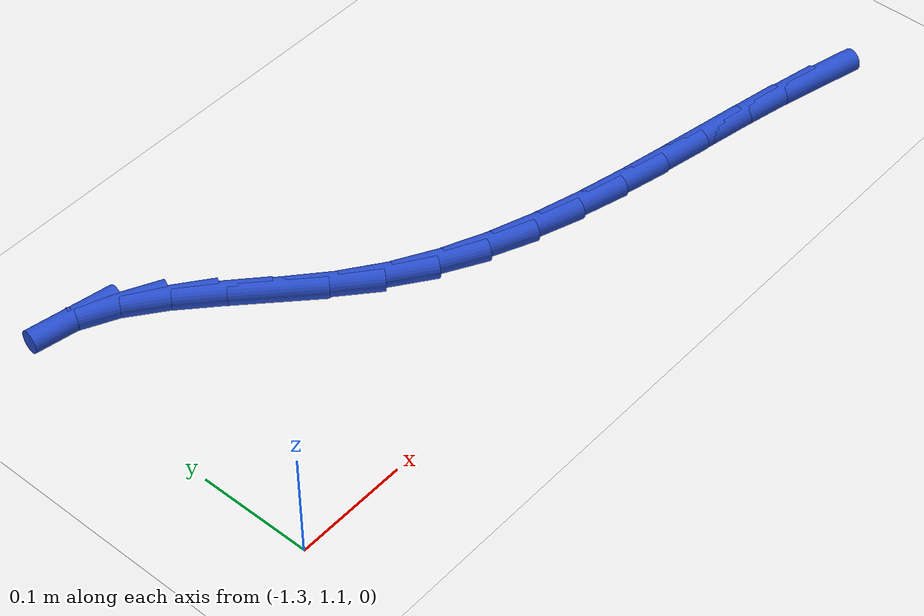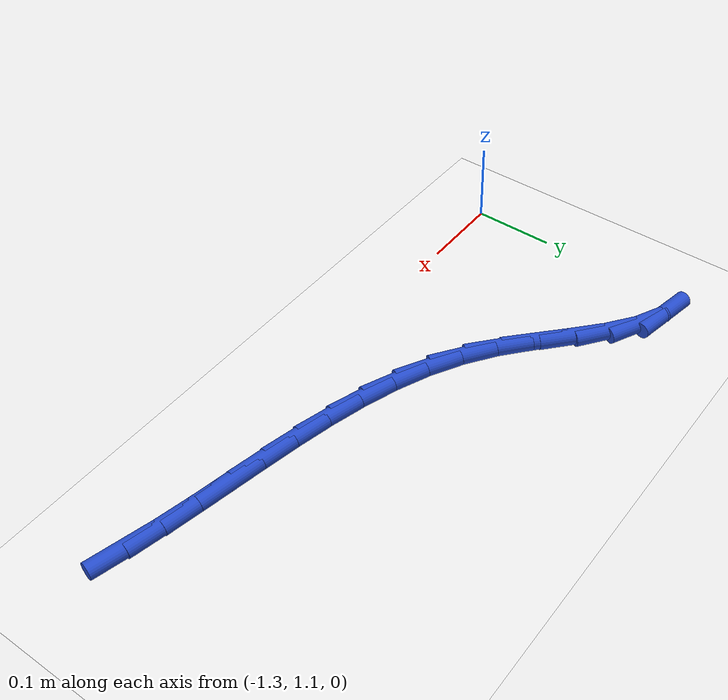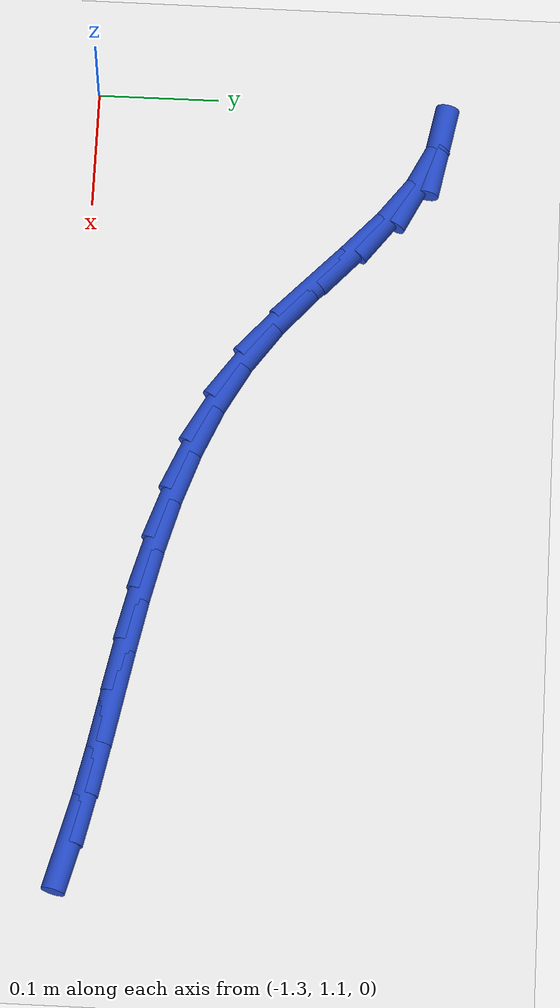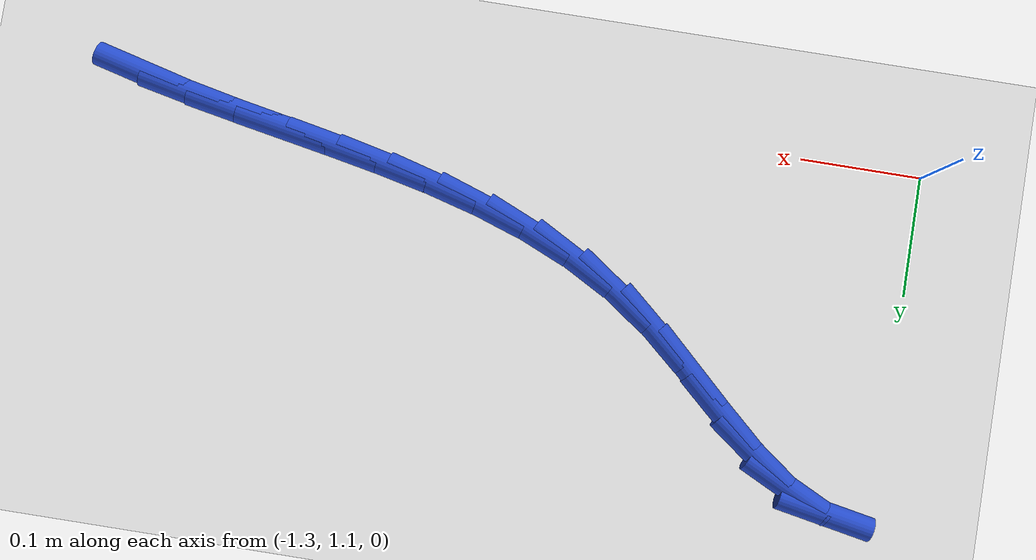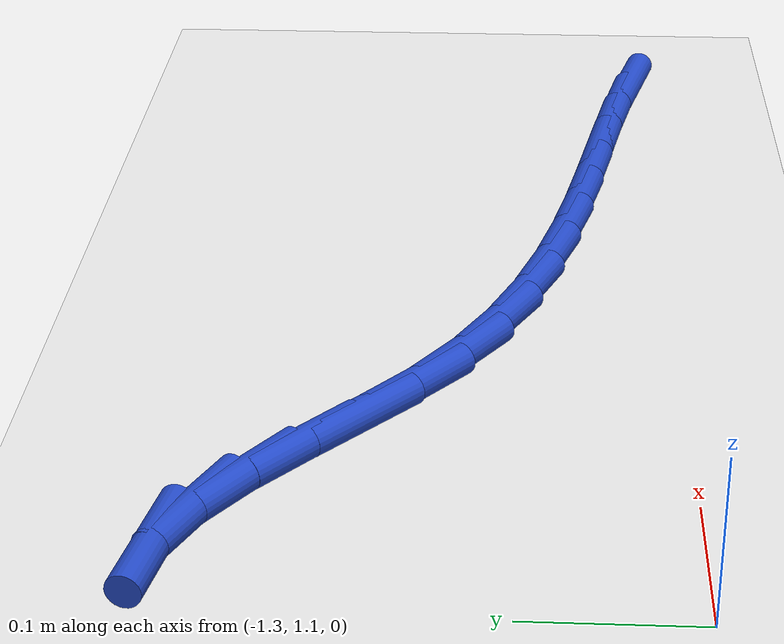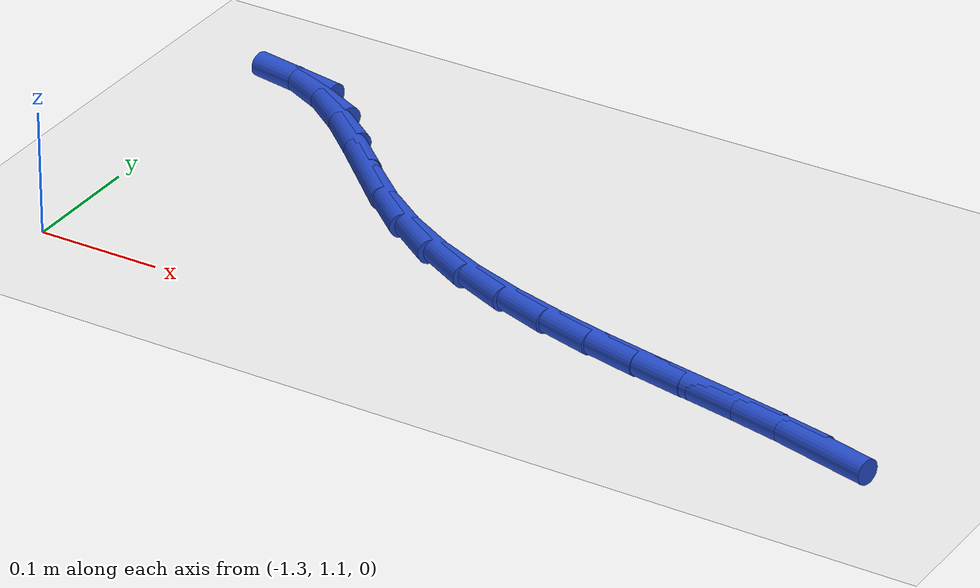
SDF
<sdf version="1.6">
 <world name="default">
  <model name="ground_plane">
   <static>1</static>
   <link name="link">
    <collision name="collision">
     <geometry><plane><normal>0 0 1</normal><size>100 100</size></plane></geometry>
     <surface><friction><ode><mu>100</mu><mu2>50</mu2></ode></friction></surface>
    </collision>
    <visual name="visual">
     <cast_shadows>0</cast_shadows>
     <geometry><plane><normal>0 0 1</normal><size>100 100</size></plane></geometry>
     <material>
      <script><uri>file://media/materials/scripts/gazebo.material</uri><name>Gazebo/WhiteGlow</name></script>
     </material>
    </visual>
   </link>
  </model>
  <model name="line">
   <link name="link_33">
    <pose>-0.6480955683417341 1.1151855350106041 0.01 0 1.57 -0.25111926044509847</pose>
    <collision name="collision">
     <geometry><cylinder><radius>0.01</radius><length>0.08</length></cylinder></geometry>
    </collision>
    <visual name="visual">
     <material>
      <script><name>Gazebo/Blue</name><uri>file://media/materials/scripts/gazebo.material</uri></script>
     </material>
     <geometry><cylinder><radius>0.01</radius><length>0.08</length></cylinder></geometry>
    </visual>
   </link>
   <link name="link_34">
    <pose>-0.6876729809734647 1.1253385067006678 0.01 0 1.57 -0.21130392288726207</pose>
    <collision name="collision">
     <geometry><cylinder><radius>0.01</radius><length>0.08</length></cylinder></geometry>
    </collision>
    <visual name="visual">
     <material>
      <script><name>Gazebo/Blue</name><uri>file://media/materials/scripts/gazebo.material</uri></script>
     </material>
     <geometry><cylinder><radius>0.01</radius><length>0.08</length></cylinder></geometry>
    </visual>
   </link>
   <link name="link_35">
    <pose>-0.7288344874224764 1.1341678961373154 0.01 0 1.57 -0.19003809825175072</pose>
    <collision name="collision">
     <geometry><cylinder><radius>0.01</radius><length>0.08</length></cylinder></geometry>
    </collision>
    <visual name="visual">
     <material>
      <script><name>Gazebo/Blue</name><uri>file://media/materials/scripts/gazebo.material</uri></script>
     </material>
     <geometry><cylinder><radius>0.01</radius><length>0.08</length></cylinder></geometry>
    </visual>
   </link>
   <link name="link_36">
    <pose>-0.7711392593505028 1.14230561436565 0.01 0 1.57 -0.18566479154197033</pose>
    <collision name="collision">
     <geometry><cylinder><radius>0.01</radius><length>0.08</length></cylinder></geometry>
    </collision>
    <visual name="visual">
     <material>
      <script><name>Gazebo/Blue</name><uri>file://media/materials/scripts/gazebo.material</uri></script>
     </material>
     <geometry><cylinder><radius>0.01</radius><length>0.08</length></cylinder></geometry>
    </visual>
   </link>
   <link name="link_37">
    <pose>-0.8141464684192783 1.1503835724307756 0.01 0 1.57 -0.19731434381740204</pose>
    <collision name="collision">
     <geometry><cylinder><radius>0.01</radius><length>0.08</length></cylinder></geometry>
    </collision>
    <visual name="visual">
     <material>
      <script><name>Gazebo/Blue</name><uri>file://media/materials/scripts/gazebo.material</uri></script>
     </material>
     <geometry><cylinder><radius>0.01</radius><length>0.08</length></cylinder></geometry>
    </visual>
   </link>
   <link name="link_38">
    <pose>-0.857415286290536 1.1590336813777957 0.01 0 1.57 -0.22482408421275132</pose>
    <collision name="collision">
     <geometry><cylinder><radius>0.01</radius><length>0.08</length></cylinder></geometry>
    </collision>
    <visual name="visual">
     <material>
      <script><name>Gazebo/Blue</name><uri>file://media/materials/scripts/gazebo.material</uri></script>
     </material>
     <geometry><cylinder><radius>0.01</radius><length>0.08</length></cylinder></geometry>
    </visual>
   </link>
   <link name="link_39">
    <pose>-0.9005048846260102 1.1688878522518136 0.01 0 1.57 -0.26860737601872353</pose>
    <collision name="collision">
     <geometry><cylinder><radius>0.01</radius><length>0.08</length></cylinder></geometry>
    </collision>
    <visual name="visual">
     <material>
      <script><name>Gazebo/Blue</name><uri>file://media/materials/scripts/gazebo.material</uri></script>
     </material>
     <geometry><cylinder><radius>0.01</radius><length>0.08</length></cylinder></geometry>
    </visual>
   </link>
   <link name="link_40">
    <pose>-0.9429744350874343 1.1805779960979335 0.01 0 1.57 -0.329449333892676</pose>
    <collision name="collision">
     <geometry><cylinder><radius>0.01</radius><length>0.08</length></cylinder></geometry>
    </collision>
    <visual name="visual">
     <material>
      <script><name>Gazebo/Blue</name><uri>file://media/materials/scripts/gazebo.material</uri></script>
     </material>
     <geometry><cylinder><radius>0.01</radius><length>0.08</length></cylinder></geometry>
    </visual>
   </link>
   <link name="link_41">
    <pose>-0.9843831093365423 1.1947360239612588 0.01 0 1.57 -0.40816504107593854</pose>
    <collision name="collision">
     <geometry><cylinder><radius>0.01</radius><length>0.08</length></cylinder></geometry>
    </collision>
    <visual name="visual">
     <material>
      <script><name>Gazebo/Blue</name><uri>file://media/materials/scripts/gazebo.material</uri></script>
     </material>
     <geometry><cylinder><radius>0.01</radius><length>0.08</length></cylinder></geometry>
    </visual>
   </link>
   <link name="link_42">
    <pose>-1.0242900790350677 1.2119938468868927 0.01 0 1.57 -0.5050466349754343</pose>
    <collision name="collision">
     <geometry><cylinder><radius>0.01</radius><length>0.08</length></cylinder></geometry>
    </collision>
    <visual name="visual">
     <material>
      <script><name>Gazebo/Blue</name><uri>file://media/materials/scripts/gazebo.material</uri></script>
     </material>
     <geometry><cylinder><radius>0.01</radius><length>0.08</length></cylinder></geometry>
    </visual>
   </link>
   <link name="link_43">
    <pose>-1.0622545158447445 1.2329833759199391 0.01 0 1.57 -0.618666435638847</pose>
    <collision name="collision">
     <geometry><cylinder><radius>0.01</radius><length>0.08</length></cylinder></geometry>
    </collision>
    <visual name="visual">
     <material>
      <script><name>Gazebo/Blue</name><uri>file://media/materials/scripts/gazebo.material</uri></script>
     </material>
     <geometry><cylinder><radius>0.01</radius><length>0.08</length></cylinder></geometry>
    </visual>
   </link>
   <link name="link_44">
    <pose>-1.0978425393630487 1.258318407421768 0.01 0 1.57 -0.7179241758423572</pose>
    <collision name="collision">
     <geometry><cylinder><radius>0.01</radius><length>0.08</length></cylinder></geometry>
    </collision>
    <visual name="visual">
     <material>
      <script><name>Gazebo/Blue</name><uri>file://media/materials/scripts/gazebo.material</uri></script>
     </material>
     <geometry><cylinder><radius>0.01</radius><length>0.08</length></cylinder></geometry>
    </visual>
   </link>
   <link name="link_45">
    <pose>-1.131098978446382 1.287364645205541 0.01 0 1.57 -0.7585628702160012</pose>
    <collision name="collision">
     <geometry><cylinder><radius>0.01</radius><length>0.08</length></cylinder></geometry>
    </collision>
    <visual name="visual">
     <material>
      <script><name>Gazebo/Blue</name><uri>file://media/materials/scripts/gazebo.material</uri></script>
     </material>
     <geometry><cylinder><radius>0.01</radius><length>0.08</length></cylinder></geometry>
    </visual>
   </link>
   <link name="link_46">
    <pose>-1.1628485845207308 1.3174543760799788 0.01 0 1.57 -0.7372889719506099</pose>
    <collision name="collision">
     <geometry><cylinder><radius>0.01</radius><length>0.08</length></cylinder></geometry>
    </collision>
    <visual name="visual">
     <material>
      <script><name>Gazebo/Blue</name><uri>file://media/materials/scripts/gazebo.material</uri></script>
     </material>
     <geometry><cylinder><radius>0.01</radius><length>0.08</length></cylinder></geometry>
    </visual>
   </link>
   <link name="link_47">
    <pose>-1.1939878359994052 1.3457328799874964 0.01 0 1.57 -0.6443869454229623</pose>
    <collision name="collision">
     <geometry><cylinder><radius>0.01</radius><length>0.08</length></cylinder></geometry>
    </collision>
    <visual name="visual">
     <material>
      <script><name>Gazebo/Blue</name><uri>file://media/materials/scripts/gazebo.material</uri></script>
     </material>
     <geometry><cylinder><radius>0.01</radius><length>0.08</length></cylinder></geometry>
    </visual>
   </link>
   <link name="link_48">
    <pose>-1.2254132112957157 1.3693454368705085 0.01 0 1.57 -0.4584365714877746</pose>
    <collision name="collision">
     <geometry><cylinder><radius>0.01</radius><length>0.08</length></cylinder></geometry>
    </collision>
    <visual name="visual">
     <material>
      <script><name>Gazebo/Blue</name><uri>file://media/materials/scripts/gazebo.material</uri></script>
     </material>
     <geometry><cylinder><radius>0.01</radius><length>0.08</length></cylinder></geometry>
    </visual>
   </link>
   <link name="link_49">
    <pose>-1.2580211097395646 1.3854375349294932 0.01 0 1.57 -0.18600717469215686</pose>
    <collision name="collision">
     <geometry><cylinder><radius>0.01</radius><length>0.08</length></cylinder></geometry>
    </collision>
    <visual name="visual">
     <material>
      <script><name>Gazebo/Blue</name><uri>file://media/materials/scripts/gazebo.material</uri></script>
     </material>
     <geometry><cylinder><radius>0.01</radius><length>0.08</length></cylinder></geometry>
    </visual>
   </link>
  </model>
 </world>
</sdf>
